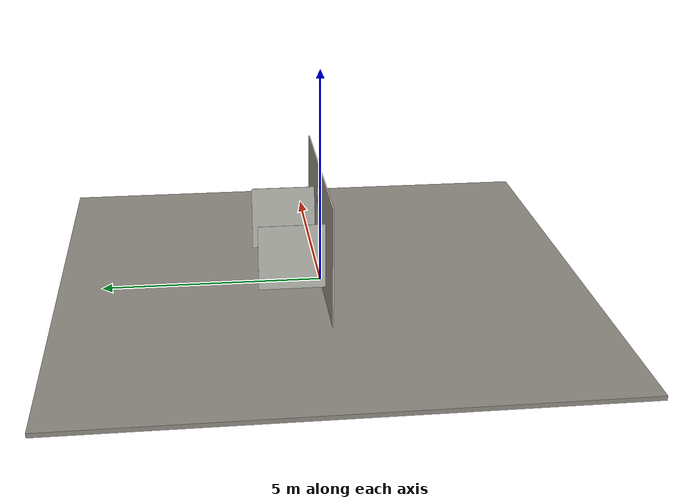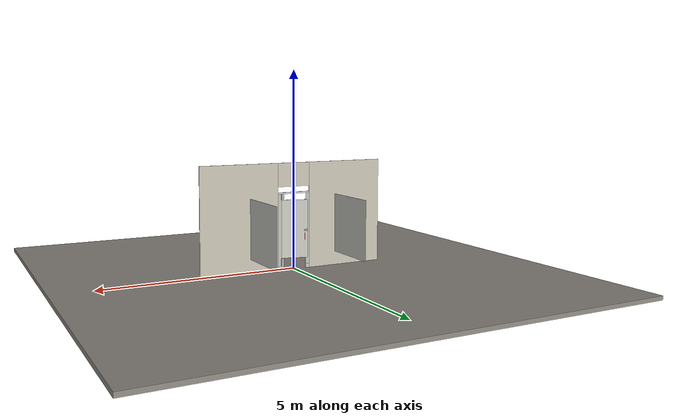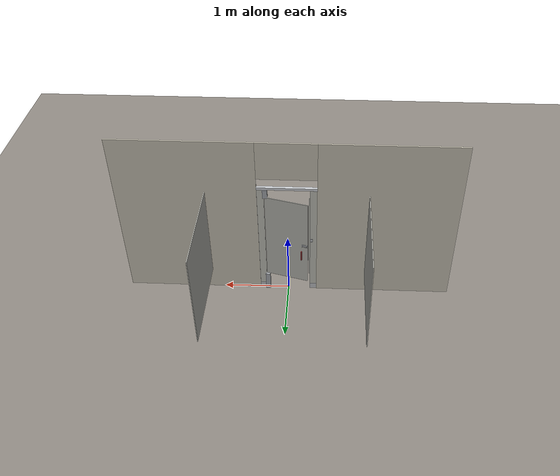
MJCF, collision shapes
<?xml version="1.0" ?>
<mujoco model="db0054_stall_full">
  <compiler angle="radian" meshdir="../../hardware" texturedir="../../textures" autolimits="true" inertiafromgeom="false"/>
  <option timestep="0.002" integrator="implicitfast" cone="elliptic" impratio="10" noslip_iterations="3">
    <flag multiccd="enable"/>
  </option>
  <size memory="16M"/>
  <default>
    <geom condim="4" solref="0.005 1" solimp="0.95 0.99 0.001"/>
    <joint solreflimit="0.005 1" solimplimit="0.95 0.99 0.001"/>
    <tendon solreflimit="0.005 1"/>
    <equality solref="0.002 1"/>
  </default>
  <visual>
    <headlight ambient="0.4 0.4 0.4" diffuse="0.7 0.7 0.7" specular="0.2 0.2 0.2"/>
    <quality shadowsize="4096"/>
    <map znear="0.01" zfar="60"/>
  </visual>
  <asset>
    <mesh name="coat_hook_d622d37ad0" file="coat_hook_d622d37ad0.obj"/>
    <mesh name="pull_1e5d69a91a" file="pull_1e5d69a91a.obj"/>
    <material name="mat_floor" rgba="0.55 0.53 0.5 1" specular="0.2" shininess="0.15" reflectance="0"/>
    <material name="mat_wall" rgba="0.78 0.76 0.7 1" specular="0.2" shininess="0.1" reflectance="0"/>
    <material name="mat_frame" rgba="0.75 0.75 0.72 1" specular="0.2" shininess="0.65" reflectance="0"/>
    <material name="mat_shoe" rgba="0.75 0.76 0.77 1" specular="0.8" shininess="0.65" reflectance="0.4"/>
    <material name="mat_headrail" rgba="0.8 0.81 0.83 1" specular="0.8" shininess="0.6" reflectance="0.4"/>
    <material name="mat_leaf" rgba="0.75 0.75 0.72 1" specular="0.2" shininess="0.65" reflectance="0"/>
    <material name="mat_op_stainless" rgba="0.75 0.76 0.77 1" specular="0.8" shininess="0.65" reflectance="0.4"/>
    <material name="mat_hinge" rgba="0.65 0.66 0.68 1" specular="0.74" shininess="0.5" reflectance="0.36"/>
    <texture name="skybox" type="skybox" builtin="gradient" rgb1="0.6 0.7 0.85" rgb2="0.9 0.92 0.95" width="256" height="256"/>
  </asset>
  <worldbody>
    <light name="sun" pos="1.5 -2.5 4" dir="-0.3 0.5 -0.8" directional="true" diffuse="0.8 0.8 0.8" specular="0.3 0.3 0.3" castshadow="true"/>
    <light name="fill" pos="-1.5 2.5 3" dir="0.3 -0.5 -0.7" directional="true" diffuse="0.35 0.35 0.4" castshadow="false"/>
    <camera name="robot_view" pos="0 -2.59375 1.77625" xyaxes="1 0 0 0 0.26963 0.962964" fovy="52"/>
    <camera name="far_view" pos="0 2.59375 1.77625" xyaxes="-1 0 0 0 -0.26963 0.962964" fovy="52"/>
    <camera name="iso" pos="-1.97125 -2.17875 2.19125" xyaxes="0.741536 -0.670913 0 0.242917 0.268487 0.932151" fovy="46"/>
    <camera name="detail_handle" pos="-0.07 -0.8665 1.13" xyaxes="0.97561 0.219512 0 -0.070934 0.315262 0.94635" fovy="38"/>
    <geom name="floor" type="box" size="6 6 0.05" pos="0 0 -0.05" material="mat_floor" group="0" contype="1" conaffinity="1" friction="0.8 0.005 0.0001" density="2400"/>
    <geom name="wall_left" type="box" size="1.032 0.0125 1.35" pos="-1.468 0 1.35" material="mat_wall" group="0" contype="1" conaffinity="1" friction="0.6 0.005 0.0001" density="800"/>
    <geom name="wall_right" type="box" size="1.032 0.0125 1.35" pos="1.468 0 1.35" material="mat_wall" group="0" contype="1" conaffinity="1" friction="0.6 0.005 0.0001" density="800"/>
    <geom name="wall_header" type="box" size="0.436 0.0125 0.3" pos="0 0 2.4" material="mat_wall" group="0" contype="1" conaffinity="1" friction="0.6 0.005 0.0001" density="800"/>
    <geom name="pilaster_l" type="box" size="0.05 0.0065 0.91" pos="-0.386 0 1.01" material="mat_frame" group="0" contype="1" conaffinity="1" friction="0.6 0.005 0.0001" density="1400"/>
    <geom name="pilaster_shoe_l" type="box" size="0.05 0.0115 0.05" pos="-0.386 0 0.05" material="mat_shoe" group="1" contype="0" conaffinity="0" density="7900"/>
    <geom name="pilaster_r" type="box" size="0.05 0.0065 0.91" pos="0.386 0 1.01" material="mat_frame" group="0" contype="1" conaffinity="1" friction="0.6 0.005 0.0001" density="1400"/>
    <geom name="pilaster_shoe_r" type="box" size="0.05 0.0115 0.05" pos="0.386 0 0.05" material="mat_shoe" group="1" contype="0" conaffinity="0" density="7900"/>
    <geom name="headrail" type="box" size="0.436 0.02 0.02" pos="0 0 1.94" material="mat_headrail" group="0" contype="1" conaffinity="1" friction="0.6 0.005 0.0001" density="2700"/>
    <geom name="partition_l" type="box" size="0.006 0.75 0.75" pos="-1.186 0.75 1.1" material="mat_frame" group="0" contype="1" conaffinity="1" friction="0.6 0.005 0.0001" density="1400"/>
    <geom name="partition_r" type="box" size="0.006 0.75 0.75" pos="1.186 0.75 1.1" material="mat_frame" group="0" contype="1" conaffinity="1" friction="0.6 0.005 0.0001" density="1400"/>
    <geom name="latch_keeper_n" type="box" size="0.02 0.0025 0.02" pos="-0.356 0.007 1" material="mat_op_stainless" group="0" contype="1" conaffinity="1" friction="0.6 0.005 0.0001" density="7900"/>
    <geom name="latch_keeper_p" type="box" size="0.02 0.0025 0.02" pos="-0.356 0.022 1" material="mat_op_stainless" group="0" contype="1" conaffinity="1" friction="0.6 0.005 0.0001" density="7900"/>
    <geom name="latch_keeper_base" type="box" size="0.02 0.01 0.003" pos="-0.356 0.0145 0.976" material="mat_op_stainless" group="0" contype="1" conaffinity="1" friction="0.6 0.005 0.0001" density="7900"/>
    <geom name="stop_strip" type="box" size="0.01 0.006 0.735" pos="-0.326 -0.0125 1.035" material="mat_frame" group="0" contype="1" conaffinity="1" friction="0.6 0.005 0.0001" density="1400"/>
    <geom name="pivot_bottom_socket" type="box" size="0.035 0.035 0.154" pos="0.316 0 0.144" material="mat_hinge" group="1" contype="0" conaffinity="0" density="7850"/>
    <geom name="pivot_top_bracket" type="box" size="0.035 0.035 0.071" pos="0.316 0 1.849" material="mat_hinge" group="1" contype="0" conaffinity="0" density="7850"/>
    <site name="approach_point" pos="0 -1.2 0" quat="1 0 0 0" size="0.05" rgba="0.2 0.9 0.2 0.5" group="4"/>
    <site name="goal_point" pos="0 1 0" quat="1 0 0 0" size="0.05" rgba="0.2 0.9 0.2 0.5" group="4"/>
    <site name="door_plane_center" pos="0 0 1" quat="1 0 0 0" size="0.02" rgba="0.2 0.9 0.2 0.5" group="4"/>
    <body name="leaf_riser" pos="0.336 0 0">
      <inertial pos="0 0 0" mass="0.01" quat="1 0 0 0" diaginertia="0.000001 0.000001 0.000001"/>
      <joint name="leaf_rise" type="slide" axis="0 0 1" limited="true" range="0 0.03" damping="1" armature="0.5" ref="0.001667"/>
      <body name="leaf" pos="0 0 0">
        <inertial pos="-0.337757 0.077283 1.028113" mass="18.517389" quat="0.564582 0.434724 -0.55749 0.425989" diaginertia="0.702122602 3.235936515 3.93089756"/>
        <joint name="leaf_hinge" type="hinge" axis="0 0 -1" pos="-0.05 0 0" limited="true" range="0 1.919862" damping="0.100375" frictionloss="0.540598" armature="0.02" ref="0.261799"/>
        <geom name="leaf_slab" type="box" size="0.33 0.0065 0.735" pos="-0.326255 0.074022 1.035" quat="0.991445 0 0 -0.130526" material="mat_leaf" group="0" contype="1" conaffinity="1" friction="0.35 0.005 0.0001" density="1"/>
        <geom name="pull_n" type="mesh" mesh="pull_1e5d69a91a" pos="-0.569419 0.132448 0.85" quat="0.092296 -0.092296 -0.701057 0.701057" material="mat_op_stainless" group="1" contype="0" conaffinity="0" density="3000"/>
        <geom name="pull_col_n" type="capsule" size="0.0095 0.08" pos="-0.584948 0.074493 0.85" quat="0.991445 0 0 -0.130526" material="mat_op_stainless" group="3" contype="1" conaffinity="1" rgba="0.8 0.3 0.3 0.25" friction="0.7 0.01 0.0001" density="3000"/>
        <geom name="pull_p" type="mesh" mesh="pull_1e5d69a91a" pos="-0.566054 0.145006 0.85" quat="0.092296 0.092296 0.701057 0.701057" material="mat_op_stainless" group="1" contype="0" conaffinity="0" density="3000"/>
        <geom name="pull_col_p" type="capsule" size="0.0095 0.08" pos="-0.550525 0.202961 0.85" quat="0.991445 0 0 -0.130526" material="mat_op_stainless" group="3" contype="1" conaffinity="1" rgba="0.8 0.3 0.3 0.25" friction="0.7 0.01 0.0001" density="3000"/>
        <geom name="slide_latch_plate" type="box" size="0.048 0.001 0.022" pos="-0.599603 0.15503 1" quat="0.991445 0 0 -0.130526" material="mat_op_stainless" group="1" contype="0" conaffinity="0" density="7900"/>
        <geom name="slide_latch_guide_leg_n" type="box" size="0.005 0.0015 0.009" pos="-0.617816 0.168193 0.9835" quat="0.092296 0.092296 0.701057 0.701057" material="mat_op_stainless" group="1" contype="0" conaffinity="0" density="7800"/>
        <geom name="slide_latch_guide_leg_p" type="box" size="0.005 0.0015 0.009" pos="-0.617816 0.168193 1.0165" quat="0.092296 0.092296 0.701057 0.701057" material="mat_op_stainless" group="1" contype="0" conaffinity="0" density="7800"/>
        <geom name="slide_latch_guide_bridge" type="box" size="0.005 0.018 0.0015" pos="-0.615875 0.175437 1" quat="0.092296 0.092296 0.701057 0.701057" material="mat_op_stainless" group="1" contype="0" conaffinity="0" density="7800"/>
        <geom name="coat_hook" type="mesh" mesh="coat_hook_d622d37ad0" pos="-0.324572 0.080301 1.62" quat="0.092296 0.092296 0.701057 0.701057" material="mat_op_stainless" group="2" contype="0" conaffinity="0" density="7000"/>
        <geom name="pivot_bottom" type="cylinder" size="0.014 0.004" pos="-0.021022 -0.007765 0.295" quat="0.991445 0 0 -0.130526" material="mat_hinge" group="1" contype="0" conaffinity="0" density="7850"/>
        <geom name="pivot_top" type="cylinder" size="0.014 0.004" pos="-0.021022 -0.007765 1.774" quat="0.991445 0 0 -0.130526" material="mat_hinge" group="1" contype="0" conaffinity="0" density="7850"/>
        <site name="pull_grip_n" pos="-0.584948 0.074493 0.85" quat="0.991445 0 0 -0.130526" size="0.012" rgba="0.2 0.9 0.2 0.5" group="4"/>
        <site name="pull_grip_p" pos="-0.550525 0.202961 0.85" quat="0.991445 0 0 -0.130526" size="0.012" rgba="0.2 0.9 0.2 0.5" group="4"/>
        <body name="slide_latch" pos="-0.592961 0.160498 1" quat="0.991445 0 0 -0.130526">
          <inertial pos="0.004044 0.001618 0" mass="0.140251" quat="-0.027514 -0.027514 0.706571 0.706571" diaginertia="0.000009989 0.000084063 0.000085949"/>
          <joint name="slide_latch_slide" type="slide" axis="1 0 0" limited="true" range="0 0.03" damping="0.5" frictionloss="0.5" armature="0.1" ref="0.03"/>
          <geom name="slide_latch_bar" type="box" size="0.04 0.004 0.012" pos="0 0 0" material="mat_op_stainless" group="0" contype="1" conaffinity="1" friction="0.6 0.005 0.0001" density="7900"/>
          <geom name="slide_latch_knob" type="capsule" size="0.005 0.012" pos="0.03 0.012 0" quat="0.707107 -0.707107 0 0" material="mat_op_stainless" group="0" contype="1" conaffinity="1" friction="0.6 0.005 0.0001" density="7850"/>
          <site name="grip_latch" pos="0.03 0.03 0" quat="1 0 0 0" size="0.01" rgba="0.2 0.9 0.2 0.5" group="4"/>
        </body>
      </body>
    </body>
  </worldbody>
  <equality>
    <joint name="leaf_rise_couple" joint1="leaf_rise" joint2="leaf_hinge" polycoef="0 0.006366 0 0 0" active="true"/>
  </equality>
  <sensor>
    <jointpos name="leaf_hinge_pos" joint="leaf_hinge"/>
    <jointvel name="leaf_hinge_vel" joint="leaf_hinge"/>
    <jointpos name="slide_latch_slide_pos" joint="slide_latch_slide"/>
    <jointvel name="slide_latch_slide_vel" joint="slide_latch_slide"/>
  </sensor>
</mujoco>
